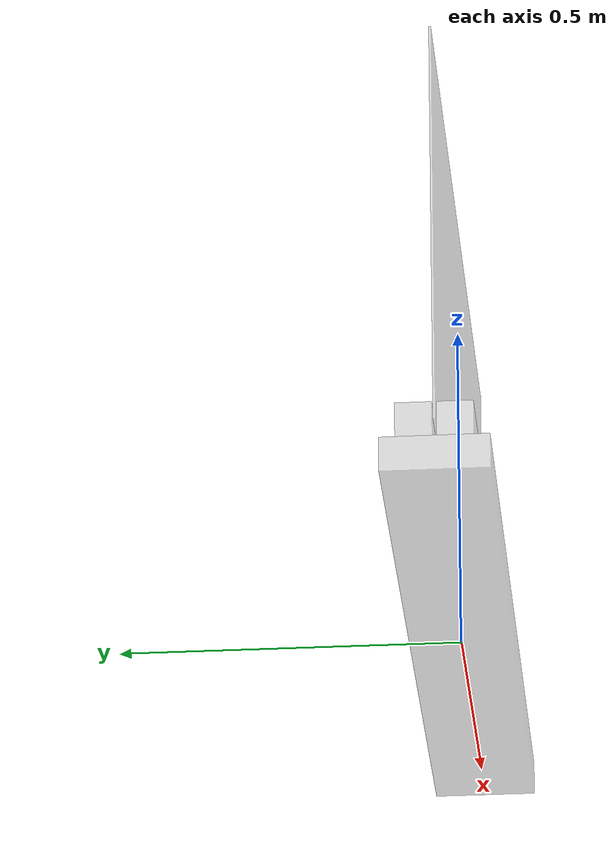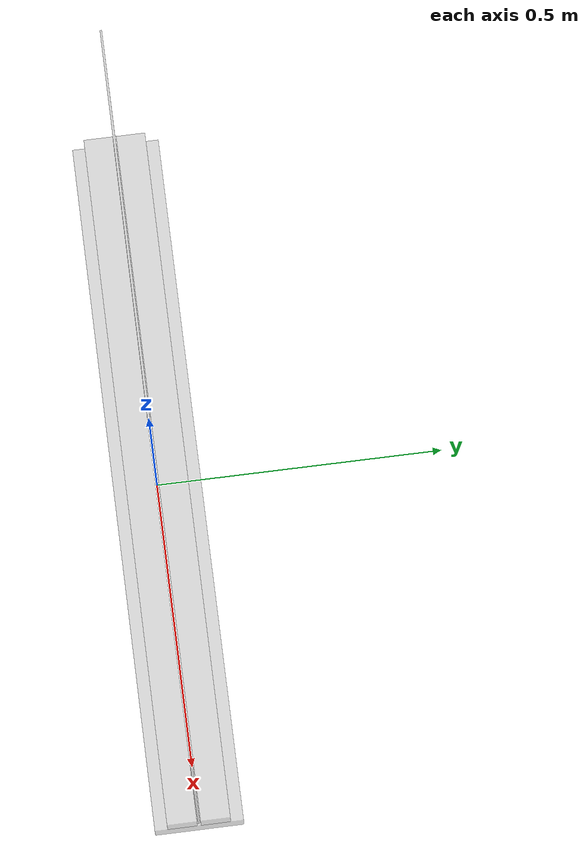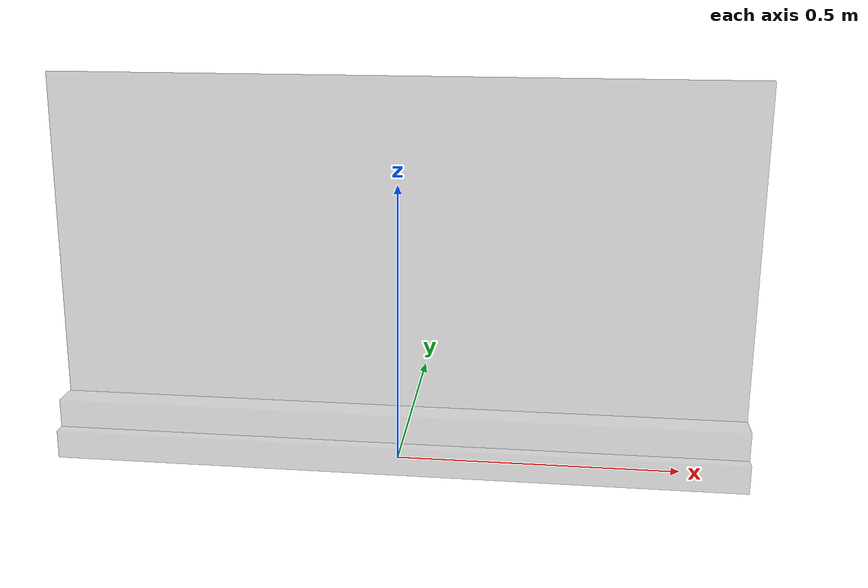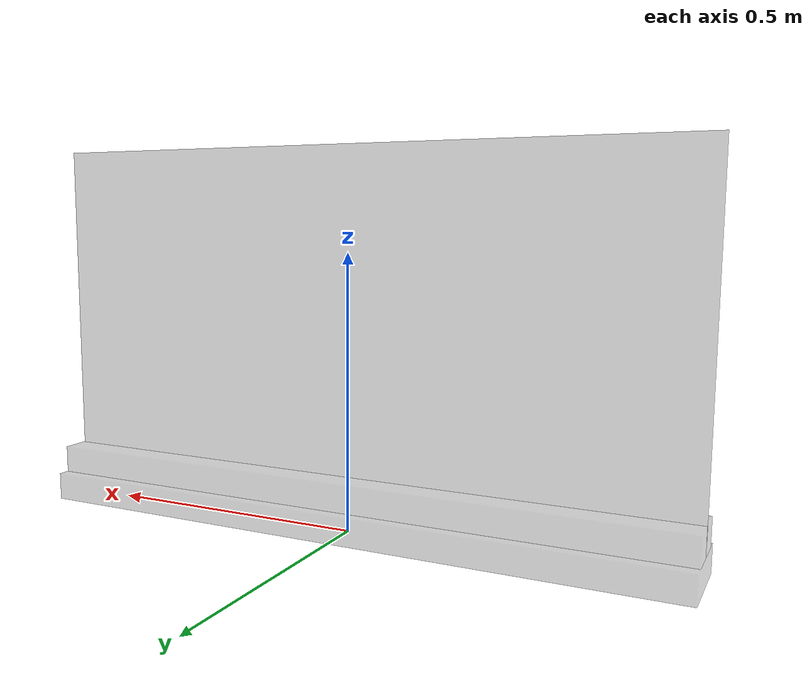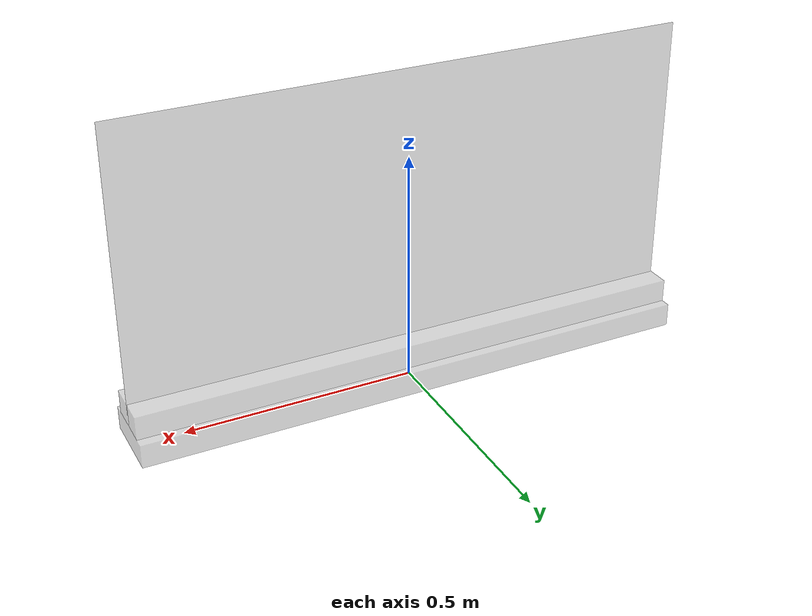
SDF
<?xml version='1.0'?>
<sdf version='1.4'>
  <model name="fleming_wall_ghost_ghost">
  	<static>true</static>

  	<link name='wall'>
            <pose>0 0 0.0254 0 0 0</pose>

            <collision name='base_collision'>
              <geometry>
                <box>
                  <size>1.2192 0.1524 0.0508</size>
                </box>
              </geometry>
            </collision>

            <visual name='base_visual'>
              <transparency>0.5</transparency>
              <geometry>
                <box>
                  <size>1.2192 0.1524 0.0508</size>
                </box>
              </geometry>
              <material>
                <script>
                  <uri>model://fleming_wall_ghost/materials/scripts</uri>
                  <uri>model://fleming_wall_ghost/materials/textures</uri>
                  <name>FlemingWall/Image</name>
                </script>
              </material>
            </visual>

            <visual name='front_strut_visual'>
              <transparency>0.5</transparency>
              <pose>0 0.028575 0.0508 0 0 0</pose>
              <geometry>
                <box>
                  <size>1.2192 0.0508 0.0508</size>
                </box>
              </geometry>
              <material>
                <script>
                  <uri>model://fleming_wall_ghost/materials/scripts</uri>
                  <uri>model://fleming_wall_ghost/materials/textures</uri>
                  <name>FlemingWall/Image</name>
                </script>
              </material>
            </visual>

            <visual name='back_strut_visual'>
              <transparency>0.5</transparency>
              <pose>0 -0.028575 0.0508 0 0 0</pose>
              <geometry>
                <box>
                  <size>1.2192 0.0508 0.0508</size>
                </box>
              </geometry>
              <material>
                <script>
                  <uri>model://fleming_wall_ghost/materials/scripts</uri>
                  <uri>model://fleming_wall_ghost/materials/textures</uri>
                  <name>FlemingWall/Image</name>
                </script>
              </material>
            </visual>

            <visual name='panel_visual'>
              <transparency>0.5</transparency>
              <pose>0 0 0.3556 0 0 0</pose>
              <geometry>
                <box>
                  <size>1.2192 0.003175 0.6096 </size>
                </box>
              </geometry>
              <material>
                <script>
                  <uri>model://fleming_wall_ghost/materials/scripts</uri>
                  <uri>model://fleming_wall_ghost/materials/textures</uri>
                  <name>FlemingWall/Image</name>
                </script>
              </material>
            </visual>
  </link>

  </model>
</sdf>
